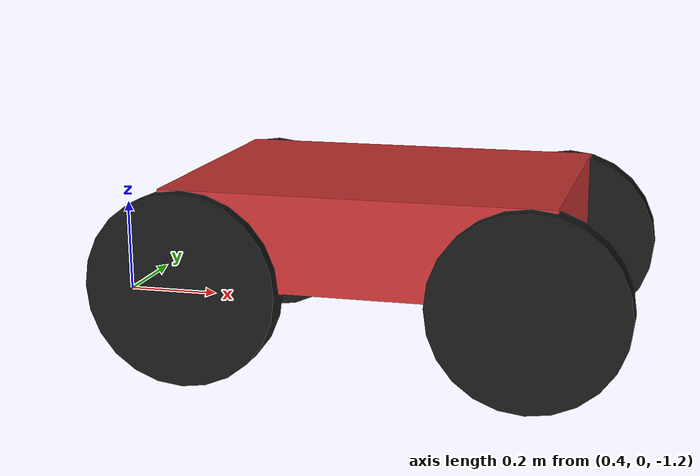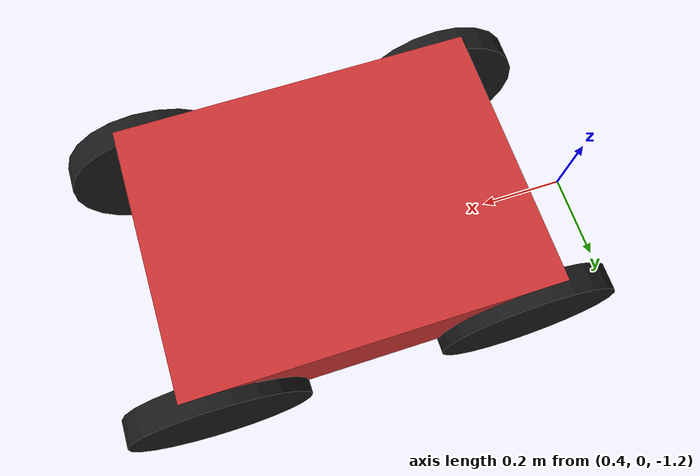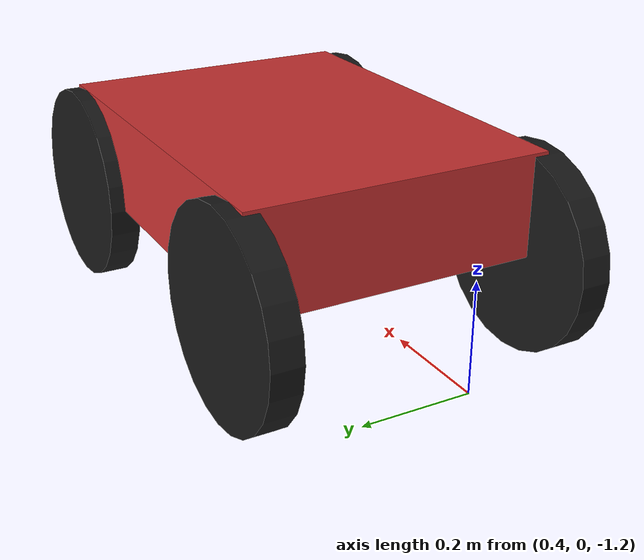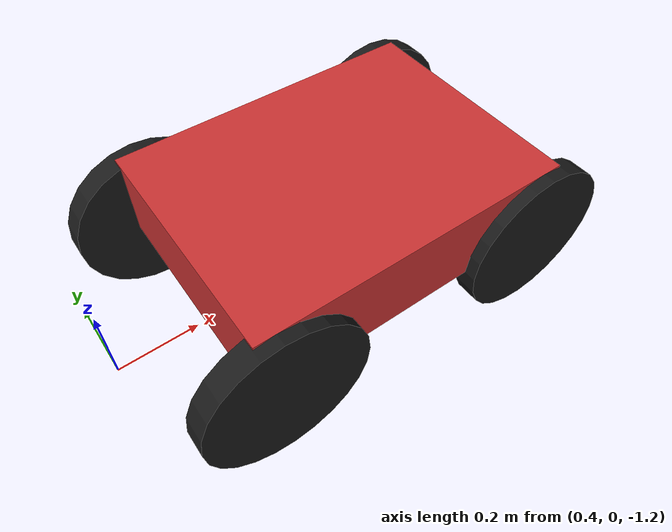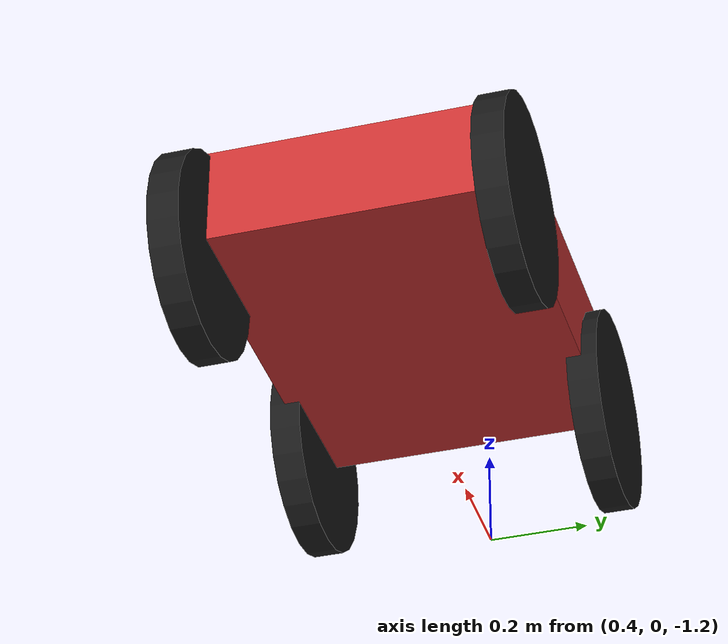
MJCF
<mujoco model="four_wheel_robot">
  <compiler angle="degree" autolimits="true"/>
  <!-- Physics settings removed - now controlled by environment -->
  <size njmax="1000" nconmax="500"/>

  <default>
    <geom friction="1.2 0.01 0.2" condim="4"/>
  </default>
<visual>
    <quality shadowsize="4096" offsamples="8" />

    <headlight active="0" />

    <rgba haze="0.15 0.25 0.35 1" />

    <map znear="0.01" zfar="50.0" />
    <global offwidth="1920" offheight="1080" />
</visual>

<asset>
    <material name="mat_chassis"
              rgba="0.8 0.2 0.2 1"
              specular="0.9"
              shininess="0.8"/>

    <material name="mat_wheel"
              rgba="0.1 0.1 0.1 1"
              specular="0.1"
              shininess="0.2"/>
</asset>

  <worldbody>
    <!-- Robot base (free joint), with 4 wheels -->
    <body name="robot" pos="1 0 -1">
      <!-- Free joint so the robot can move anywhere, with damping for stability -->
      <joint name="root" type="free" damping="0.1"/>

      <!-- Chassis -->
      <!-- box size = half-dimensions: x=0.40, y=0.30, z=0.10  (full size: 0.8 x 0.6 x 0.2 m) -->
      <geom name="chassis" type="box" size="0.40 0.30 0.10" material="mat_chassis" mass="15"/>

      <!-- Wheel parameters -->
      <!-- wheel radius r, half-length (width/2) w/2. Cylinder’s axis is local Z; we rotate with euler="90 0 0"
           so the cylinder’s axis aligns with world Y (the hinge axis below). -->
      <!-- Positions: +-x_off, +-y_off from chassis center -->
      <!-- Extended wheels outside chassis for better visibility: 0.25 + 0.05 = 0.30 -->
      <body name="wheel_fl" pos=" 0.35  0.30 -0.10">  <!-- front-left -->
        <joint name="hinge_fl" type="hinge" axis="0 1 0" damping="0.2" limited="false"/>
        <geom  name="geom_fl"  type="cylinder" size="0.2 0.03" euler="90 0 0" material="mat_wheel" mass="1.0"/>
      </body>

      <body name="wheel_fr" pos=" 0.35 -0.30 -0.10">  <!-- front-right -->
        <joint name="hinge_fr" type="hinge" axis="0 1 0" damping="0.2" limited="false"/>
        <geom  name="geom_fr"  type="cylinder" size="0.2 0.03" euler="90 0 0" material="mat_wheel" mass="1.0"/>
      </body>

      <body name="wheel_rl" pos="-0.35  0.30 -0.10">  <!-- rear-left -->
        <joint name="hinge_rl" type="hinge" axis="0 1 0" damping="0.2" limited="false"/>
        <geom  name="geom_rl"  type="cylinder" size="0.2 0.03" euler="90 0 0" material="mat_wheel" mass="1.0"/>
      </body>

      <body name="wheel_rr" pos="-0.35 -0.30 -0.10">  <!-- rear-right -->
        <joint name="hinge_rr" type="hinge" axis="0 1 0" damping="0.2" limited="false"/>
        <geom  name="geom_rr"  type="cylinder" size="0.2 0.03" euler="90 0 0" material="mat_wheel" mass="1.0"/>
      </body>
    </body>
  </worldbody>

  <!-- Drive each wheel with a velocity motor (rad/s). Use left/right differentials to steer. -->
  <actuator>
    <!-- Reduced kv gain for realistic speed control -->
    <velocity name="motor_fl" joint="hinge_fl" kv="2" ctrllimited="true" ctrlrange="-100 100"/>
    <velocity name="motor_fr" joint="hinge_fr" kv="2" ctrllimited="true" ctrlrange="-100 100"/>
    <velocity name="motor_rl" joint="hinge_rl" kv="2" ctrllimited="true" ctrlrange="-100 100"/>
    <velocity name="motor_rr" joint="hinge_rr" kv="2" ctrllimited="true" ctrlrange="-100 100"/>
  </actuator>
</mujoco>
